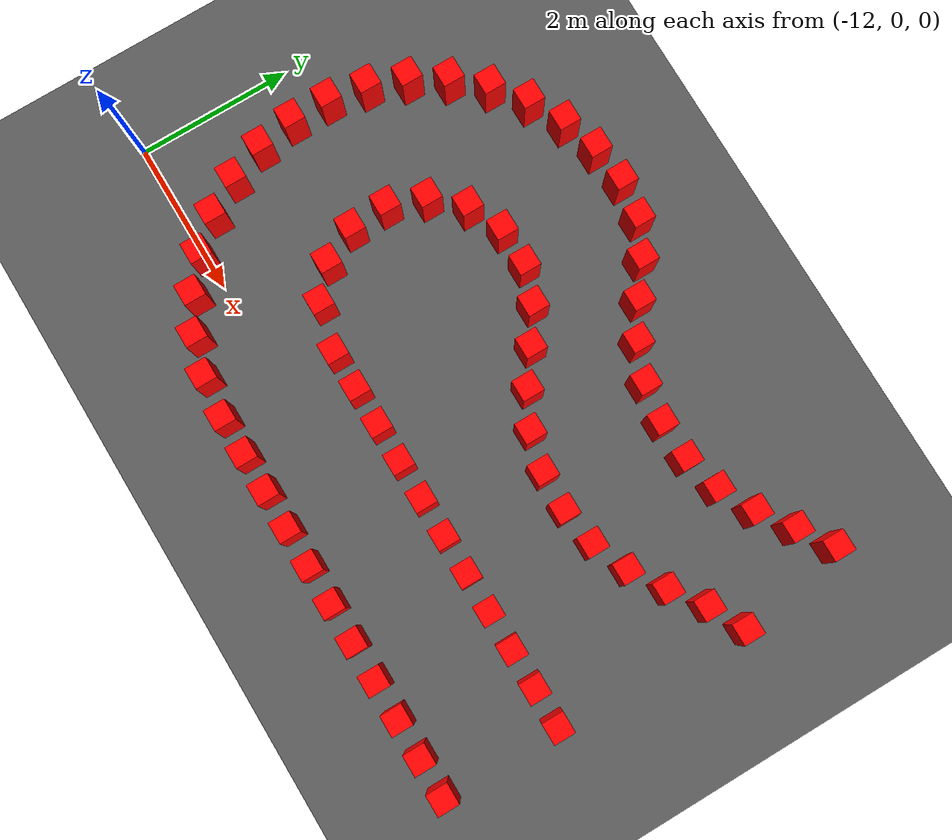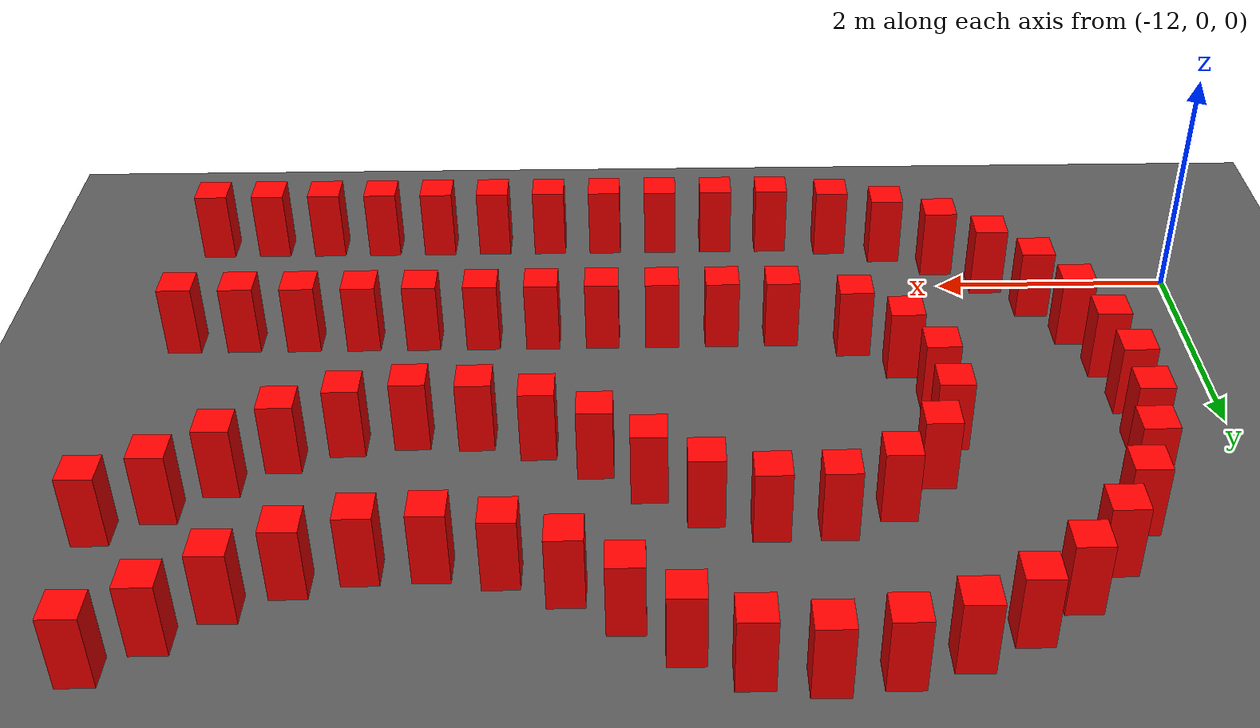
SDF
<sdf version="1.6">
 <world name="prototype">
  <model name="ground">
   <static>true</static>
   <pose>0 0 -0.05 0 0 0</pose>
   <link name="body">
    <visual name="visual">
     <geometry><box><size>200 200 0.1</size></box></geometry>
     <material><ambient>.35 .35 .35 1</ambient><diffuse>.35 .35 .35 1</diffuse></material>
    </visual>
    <collision name="collision"><geometry><box><size>200 200 0.1</size></box></geometry></collision>
   </link>
  </model>
  <model name="cone_proxy_c0">
   <static>true</static>
   <pose>-8.5207 -0.7559 0.315 0 0 0</pose>
   <link name="body">
    <visual name="visual">
     <geometry><box><size>.28 .28 .63</size></box></geometry>
     <material><ambient>1 0 0 1</ambient><diffuse>1 0 0 1</diffuse></material>
    </visual>
    <collision name="collision"><geometry><box><size>.28 .28 .63</size></box></geometry></collision>
   </link>
  </model>
  <model name="cone_proxy_c1">
   <static>true</static>
   <pose>-8.0168 -0.7559 0.315 0 0 0</pose>
   <link name="body">
    <visual name="visual">
     <geometry><box><size>.28 .28 .63</size></box></geometry>
     <material><ambient>1 0 0 1</ambient><diffuse>1 0 0 1</diffuse></material>
    </visual>
    <collision name="collision"><geometry><box><size>.28 .28 .63</size></box></geometry></collision>
   </link>
  </model>
  <model name="cone_proxy_c2">
   <static>true</static>
   <pose>-7.5129 -0.7559 0.315 0 0 0</pose>
   <link name="body">
    <visual name="visual">
     <geometry><box><size>.28 .28 .63</size></box></geometry>
     <material><ambient>1 0 0 1</ambient><diffuse>1 0 0 1</diffuse></material>
    </visual>
    <collision name="collision"><geometry><box><size>.28 .28 .63</size></box></geometry></collision>
   </link>
  </model>
  <model name="cone_proxy_c3">
   <static>true</static>
   <pose>-7.0089 -0.7559 0.315 0 0 0</pose>
   <link name="body">
    <visual name="visual">
     <geometry><box><size>.28 .28 .63</size></box></geometry>
     <material><ambient>1 0 0 1</ambient><diffuse>1 0 0 1</diffuse></material>
    </visual>
    <collision name="collision"><geometry><box><size>.28 .28 .63</size></box></geometry></collision>
   </link>
  </model>
  <model name="cone_proxy_c4">
   <static>true</static>
   <pose>-6.5050 -0.7559 0.315 0 0 0</pose>
   <link name="body">
    <visual name="visual">
     <geometry><box><size>.28 .28 .63</size></box></geometry>
     <material><ambient>1 0 0 1</ambient><diffuse>1 0 0 1</diffuse></material>
    </visual>
    <collision name="collision"><geometry><box><size>.28 .28 .63</size></box></geometry></collision>
   </link>
  </model>
  <model name="cone_proxy_c5">
   <static>true</static>
   <pose>-6.0010 -0.7559 0.315 0 0 0</pose>
   <link name="body">
    <visual name="visual">
     <geometry><box><size>.28 .28 .63</size></box></geometry>
     <material><ambient>1 0 0 1</ambient><diffuse>1 0 0 1</diffuse></material>
    </visual>
    <collision name="collision"><geometry><box><size>.28 .28 .63</size></box></geometry></collision>
   </link>
  </model>
  <model name="cone_proxy_c6">
   <static>true</static>
   <pose>-5.4971 -0.7559 0.315 0 0 0</pose>
   <link name="body">
    <visual name="visual">
     <geometry><box><size>.28 .28 .63</size></box></geometry>
     <material><ambient>1 0 0 1</ambient><diffuse>1 0 0 1</diffuse></material>
    </visual>
    <collision name="collision"><geometry><box><size>.28 .28 .63</size></box></geometry></collision>
   </link>
  </model>
  <model name="cone_proxy_c7">
   <static>true</static>
   <pose>-4.9931 -0.7559 0.315 0 0 0</pose>
   <link name="body">
    <visual name="visual">
     <geometry><box><size>.28 .28 .63</size></box></geometry>
     <material><ambient>1 0 0 1</ambient><diffuse>1 0 0 1</diffuse></material>
    </visual>
    <collision name="collision"><geometry><box><size>.28 .28 .63</size></box></geometry></collision>
   </link>
  </model>
  <model name="cone_proxy_c8">
   <static>true</static>
   <pose>-4.4892 -0.7559 0.315 0 0 0</pose>
   <link name="body">
    <visual name="visual">
     <geometry><box><size>.28 .28 .63</size></box></geometry>
     <material><ambient>1 0 0 1</ambient><diffuse>1 0 0 1</diffuse></material>
    </visual>
    <collision name="collision"><geometry><box><size>.28 .28 .63</size></box></geometry></collision>
   </link>
  </model>
  <model name="cone_proxy_c9">
   <static>true</static>
   <pose>-3.9852 -0.7559 0.315 0 0 0</pose>
   <link name="body">
    <visual name="visual">
     <geometry><box><size>.28 .28 .63</size></box></geometry>
     <material><ambient>1 0 0 1</ambient><diffuse>1 0 0 1</diffuse></material>
    </visual>
    <collision name="collision"><geometry><box><size>.28 .28 .63</size></box></geometry></collision>
   </link>
  </model>
  <model name="cone_proxy_c10">
   <static>true</static>
   <pose>-3.4813 -0.7559 0.315 0 0 0</pose>
   <link name="body">
    <visual name="visual">
     <geometry><box><size>.28 .28 .63</size></box></geometry>
     <material><ambient>1 0 0 1</ambient><diffuse>1 0 0 1</diffuse></material>
    </visual>
    <collision name="collision"><geometry><box><size>.28 .28 .63</size></box></geometry></collision>
   </link>
  </model>
  <model name="cone_proxy_c41">
   <static>true</static>
   <pose>-3.5734 4.5623 0.315 0 0 0</pose>
   <link name="body">
    <visual name="visual">
     <geometry><box><size>.28 .28 .63</size></box></geometry>
     <material><ambient>1 0 0 1</ambient><diffuse>1 0 0 1</diffuse></material>
    </visual>
    <collision name="collision"><geometry><box><size>.28 .28 .63</size></box></geometry></collision>
   </link>
  </model>
  <model name="cone_proxy_c42">
   <static>true</static>
   <pose>-3.9902 4.2798 0.315 0 0 0</pose>
   <link name="body">
    <visual name="visual">
     <geometry><box><size>.28 .28 .63</size></box></geometry>
     <material><ambient>1 0 0 1</ambient><diffuse>1 0 0 1</diffuse></material>
    </visual>
    <collision name="collision"><geometry><box><size>.28 .28 .63</size></box></geometry></collision>
   </link>
  </model>
  <model name="cone_proxy_c43">
   <static>true</static>
   <pose>-4.3991 3.9855 0.315 0 0 0</pose>
   <link name="body">
    <visual name="visual">
     <geometry><box><size>.28 .28 .63</size></box></geometry>
     <material><ambient>1 0 0 1</ambient><diffuse>1 0 0 1</diffuse></material>
    </visual>
    <collision name="collision"><geometry><box><size>.28 .28 .63</size></box></geometry></collision>
   </link>
  </model>
  <model name="cone_proxy_c44">
   <static>true</static>
   <pose>-4.8460 3.7549 0.315 0 0 0</pose>
   <link name="body">
    <visual name="visual">
     <geometry><box><size>.28 .28 .63</size></box></geometry>
     <material><ambient>1 0 0 1</ambient><diffuse>1 0 0 1</diffuse></material>
    </visual>
    <collision name="collision"><geometry><box><size>.28 .28 .63</size></box></geometry></collision>
   </link>
  </model>
  <model name="cone_proxy_c45">
   <static>true</static>
   <pose>-5.3330 3.6297 0.315 0 0 0</pose>
   <link name="body">
    <visual name="visual">
     <geometry><box><size>.28 .28 .63</size></box></geometry>
     <material><ambient>1 0 0 1</ambient><diffuse>1 0 0 1</diffuse></material>
    </visual>
    <collision name="collision"><geometry><box><size>.28 .28 .63</size></box></geometry></collision>
   </link>
  </model>
  <model name="cone_proxy_c46">
   <static>true</static>
   <pose>-5.8358 3.6112 0.315 0 0 0</pose>
   <link name="body">
    <visual name="visual">
     <geometry><box><size>.28 .28 .63</size></box></geometry>
     <material><ambient>1 0 0 1</ambient><diffuse>1 0 0 1</diffuse></material>
    </visual>
    <collision name="collision"><geometry><box><size>.28 .28 .63</size></box></geometry></collision>
   </link>
  </model>
  <model name="cone_proxy_c47">
   <static>true</static>
   <pose>-6.3326 3.6900 0.315 0 0 0</pose>
   <link name="body">
    <visual name="visual">
     <geometry><box><size>.28 .28 .63</size></box></geometry>
     <material><ambient>1 0 0 1</ambient><diffuse>1 0 0 1</diffuse></material>
    </visual>
    <collision name="collision"><geometry><box><size>.28 .28 .63</size></box></geometry></collision>
   </link>
  </model>
  <model name="cone_proxy_c48">
   <static>true</static>
   <pose>-6.7976 3.8811 0.315 0 0 0</pose>
   <link name="body">
    <visual name="visual">
     <geometry><box><size>.28 .28 .63</size></box></geometry>
     <material><ambient>1 0 0 1</ambient><diffuse>1 0 0 1</diffuse></material>
    </visual>
    <collision name="collision"><geometry><box><size>.28 .28 .63</size></box></geometry></collision>
   </link>
  </model>
  <model name="cone_proxy_c49">
   <static>true</static>
   <pose>-7.2186 4.1572 0.315 0 0 0</pose>
   <link name="body">
    <visual name="visual">
     <geometry><box><size>.28 .28 .63</size></box></geometry>
     <material><ambient>1 0 0 1</ambient><diffuse>1 0 0 1</diffuse></material>
    </visual>
    <collision name="collision"><geometry><box><size>.28 .28 .63</size></box></geometry></collision>
   </link>
  </model>
  <model name="cone_proxy_c50">
   <static>true</static>
   <pose>-7.6248 4.4554 0.315 0 0 0</pose>
   <link name="body">
    <visual name="visual">
     <geometry><box><size>.28 .28 .63</size></box></geometry>
     <material><ambient>1 0 0 1</ambient><diffuse>1 0 0 1</diffuse></material>
    </visual>
    <collision name="collision"><geometry><box><size>.28 .28 .63</size></box></geometry></collision>
   </link>
  </model>
  <model name="cone_proxy_c51">
   <static>true</static>
   <pose>-8.0721 4.6837 0.315 0 0 0</pose>
   <link name="body">
    <visual name="visual">
     <geometry><box><size>.28 .28 .63</size></box></geometry>
     <material><ambient>1 0 0 1</ambient><diffuse>1 0 0 1</diffuse></material>
    </visual>
    <collision name="collision"><geometry><box><size>.28 .28 .63</size></box></geometry></collision>
   </link>
  </model>
  <model name="cone_proxy_c52">
   <static>true</static>
   <pose>-8.5682 4.7543 0.315 0 0 0</pose>
   <link name="body">
    <visual name="visual">
     <geometry><box><size>.28 .28 .63</size></box></geometry>
     <material><ambient>1 0 0 1</ambient><diffuse>1 0 0 1</diffuse></material>
    </visual>
    <collision name="collision"><geometry><box><size>.28 .28 .63</size></box></geometry></collision>
   </link>
  </model>
  <model name="cone_proxy_c53">
   <static>true</static>
   <pose>-9.0685 4.7002 0.315 0 0 0</pose>
   <link name="body">
    <visual name="visual">
     <geometry><box><size>.28 .28 .63</size></box></geometry>
     <material><ambient>1 0 0 1</ambient><diffuse>1 0 0 1</diffuse></material>
    </visual>
    <collision name="collision"><geometry><box><size>.28 .28 .63</size></box></geometry></collision>
   </link>
  </model>
  <model name="cone_proxy_c54">
   <static>true</static>
   <pose>-9.5501 4.5547 0.315 0 0 0</pose>
   <link name="body">
    <visual name="visual">
     <geometry><box><size>.28 .28 .63</size></box></geometry>
     <material><ambient>1 0 0 1</ambient><diffuse>1 0 0 1</diffuse></material>
    </visual>
    <collision name="collision"><geometry><box><size>.28 .28 .63</size></box></geometry></collision>
   </link>
  </model>
  <model name="cone_proxy_c55">
   <static>true</static>
   <pose>-9.9981 4.3258 0.315 0 0 0</pose>
   <link name="body">
    <visual name="visual">
     <geometry><box><size>.28 .28 .63</size></box></geometry>
     <material><ambient>1 0 0 1</ambient><diffuse>1 0 0 1</diffuse></material>
    </visual>
    <collision name="collision"><geometry><box><size>.28 .28 .63</size></box></geometry></collision>
   </link>
  </model>
  <model name="cone_proxy_c56">
   <static>true</static>
   <pose>-10.3960 4.0177 0.315 0 0 0</pose>
   <link name="body">
    <visual name="visual">
     <geometry><box><size>.28 .28 .63</size></box></geometry>
     <material><ambient>1 0 0 1</ambient><diffuse>1 0 0 1</diffuse></material>
    </visual>
    <collision name="collision"><geometry><box><size>.28 .28 .63</size></box></geometry></collision>
   </link>
  </model>
  <model name="cone_proxy_c57">
   <static>true</static>
   <pose>-10.7316 3.6429 0.315 0 0 0</pose>
   <link name="body">
    <visual name="visual">
     <geometry><box><size>.28 .28 .63</size></box></geometry>
     <material><ambient>1 0 0 1</ambient><diffuse>1 0 0 1</diffuse></material>
    </visual>
    <collision name="collision"><geometry><box><size>.28 .28 .63</size></box></geometry></collision>
   </link>
  </model>
  <model name="cone_proxy_c58">
   <static>true</static>
   <pose>-10.9947 3.2140 0.315 0 0 0</pose>
   <link name="body">
    <visual name="visual">
     <geometry><box><size>.28 .28 .63</size></box></geometry>
     <material><ambient>1 0 0 1</ambient><diffuse>1 0 0 1</diffuse></material>
    </visual>
    <collision name="collision"><geometry><box><size>.28 .28 .63</size></box></geometry></collision>
   </link>
  </model>
  <model name="cone_proxy_c59">
   <static>true</static>
   <pose>-11.1728 2.7434 0.315 0 0 0</pose>
   <link name="body">
    <visual name="visual">
     <geometry><box><size>.28 .28 .63</size></box></geometry>
     <material><ambient>1 0 0 1</ambient><diffuse>1 0 0 1</diffuse></material>
    </visual>
    <collision name="collision"><geometry><box><size>.28 .28 .63</size></box></geometry></collision>
   </link>
  </model>
  <model name="cone_proxy_c60">
   <static>true</static>
   <pose>-11.2643 2.2487 0.315 0 0 0</pose>
   <link name="body">
    <visual name="visual">
     <geometry><box><size>.28 .28 .63</size></box></geometry>
     <material><ambient>1 0 0 1</ambient><diffuse>1 0 0 1</diffuse></material>
    </visual>
    <collision name="collision"><geometry><box><size>.28 .28 .63</size></box></geometry></collision>
   </link>
  </model>
  <model name="cone_proxy_c61">
   <static>true</static>
   <pose>-11.2639 1.7455 0.315 0 0 0</pose>
   <link name="body">
    <visual name="visual">
     <geometry><box><size>.28 .28 .63</size></box></geometry>
     <material><ambient>1 0 0 1</ambient><diffuse>1 0 0 1</diffuse></material>
    </visual>
    <collision name="collision"><geometry><box><size>.28 .28 .63</size></box></geometry></collision>
   </link>
  </model>
  <model name="cone_proxy_c62">
   <static>true</static>
   <pose>-11.1712 1.2511 0.315 0 0 0</pose>
   <link name="body">
    <visual name="visual">
     <geometry><box><size>.28 .28 .63</size></box></geometry>
     <material><ambient>1 0 0 1</ambient><diffuse>1 0 0 1</diffuse></material>
    </visual>
    <collision name="collision"><geometry><box><size>.28 .28 .63</size></box></geometry></collision>
   </link>
  </model>
  <model name="cone_proxy_c63">
   <static>true</static>
   <pose>-10.9919 0.7810 0.315 0 0 0</pose>
   <link name="body">
    <visual name="visual">
     <geometry><box><size>.28 .28 .63</size></box></geometry>
     <material><ambient>1 0 0 1</ambient><diffuse>1 0 0 1</diffuse></material>
    </visual>
    <collision name="collision"><geometry><box><size>.28 .28 .63</size></box></geometry></collision>
   </link>
  </model>
  <model name="cone_proxy_c64">
   <static>true</static>
   <pose>-10.7281 0.3524 0.315 0 0 0</pose>
   <link name="body">
    <visual name="visual">
     <geometry><box><size>.28 .28 .63</size></box></geometry>
     <material><ambient>1 0 0 1</ambient><diffuse>1 0 0 1</diffuse></material>
    </visual>
    <collision name="collision"><geometry><box><size>.28 .28 .63</size></box></geometry></collision>
   </link>
  </model>
  <model name="cone_proxy_c65">
   <static>true</static>
   <pose>-10.3917 -0.0216 0.315 0 0 0</pose>
   <link name="body">
    <visual name="visual">
     <geometry><box><size>.28 .28 .63</size></box></geometry>
     <material><ambient>1 0 0 1</ambient><diffuse>1 0 0 1</diffuse></material>
    </visual>
    <collision name="collision"><geometry><box><size>.28 .28 .63</size></box></geometry></collision>
   </link>
  </model>
  <model name="cone_proxy_c66">
   <static>true</static>
   <pose>-9.9933 -0.3289 0.315 0 0 0</pose>
   <link name="body">
    <visual name="visual">
     <geometry><box><size>.28 .28 .63</size></box></geometry>
     <material><ambient>1 0 0 1</ambient><diffuse>1 0 0 1</diffuse></material>
    </visual>
    <collision name="collision"><geometry><box><size>.28 .28 .63</size></box></geometry></collision>
   </link>
  </model>
  <model name="cone_proxy_c67">
   <static>true</static>
   <pose>-9.5447 -0.5568 0.315 0 0 0</pose>
   <link name="body">
    <visual name="visual">
     <geometry><box><size>.28 .28 .63</size></box></geometry>
     <material><ambient>1 0 0 1</ambient><diffuse>1 0 0 1</diffuse></material>
    </visual>
    <collision name="collision"><geometry><box><size>.28 .28 .63</size></box></geometry></collision>
   </link>
  </model>
  <model name="cone_proxy_c68">
   <static>true</static>
   <pose>-9.0628 -0.7011 0.315 0 0 0</pose>
   <link name="body">
    <visual name="visual">
     <geometry><box><size>.28 .28 .63</size></box></geometry>
     <material><ambient>1 0 0 1</ambient><diffuse>1 0 0 1</diffuse></material>
    </visual>
    <collision name="collision"><geometry><box><size>.28 .28 .63</size></box></geometry></collision>
   </link>
  </model>
  <model name="cone_proxy_c69">
   <static>true</static>
   <pose>-8.5207 0.7559 0.315 0 0 0</pose>
   <link name="body">
    <visual name="visual">
     <geometry><box><size>.28 .28 .63</size></box></geometry>
     <material><ambient>1 0 0 1</ambient><diffuse>1 0 0 1</diffuse></material>
    </visual>
    <collision name="collision"><geometry><box><size>.28 .28 .63</size></box></geometry></collision>
   </link>
  </model>
  <model name="cone_proxy_c70">
   <static>true</static>
   <pose>-8.0168 0.7559 0.315 0 0 0</pose>
   <link name="body">
    <visual name="visual">
     <geometry><box><size>.28 .28 .63</size></box></geometry>
     <material><ambient>1 0 0 1</ambient><diffuse>1 0 0 1</diffuse></material>
    </visual>
    <collision name="collision"><geometry><box><size>.28 .28 .63</size></box></geometry></collision>
   </link>
  </model>
  <model name="cone_proxy_c71">
   <static>true</static>
   <pose>-7.5129 0.7559 0.315 0 0 0</pose>
   <link name="body">
    <visual name="visual">
     <geometry><box><size>.28 .28 .63</size></box></geometry>
     <material><ambient>1 0 0 1</ambient><diffuse>1 0 0 1</diffuse></material>
    </visual>
    <collision name="collision"><geometry><box><size>.28 .28 .63</size></box></geometry></collision>
   </link>
  </model>
  <model name="cone_proxy_c72">
   <static>true</static>
   <pose>-7.0089 0.7559 0.315 0 0 0</pose>
   <link name="body">
    <visual name="visual">
     <geometry><box><size>.28 .28 .63</size></box></geometry>
     <material><ambient>1 0 0 1</ambient><diffuse>1 0 0 1</diffuse></material>
    </visual>
    <collision name="collision"><geometry><box><size>.28 .28 .63</size></box></geometry></collision>
   </link>
  </model>
  <model name="cone_proxy_c73">
   <static>true</static>
   <pose>-6.5050 0.7559 0.315 0 0 0</pose>
   <link name="body">
    <visual name="visual">
     <geometry><box><size>.28 .28 .63</size></box></geometry>
     <material><ambient>1 0 0 1</ambient><diffuse>1 0 0 1</diffuse></material>
    </visual>
    <collision name="collision"><geometry><box><size>.28 .28 .63</size></box></geometry></collision>
   </link>
  </model>
  <model name="cone_proxy_c74">
   <static>true</static>
   <pose>-6.0010 0.7559 0.315 0 0 0</pose>
   <link name="body">
    <visual name="visual">
     <geometry><box><size>.28 .28 .63</size></box></geometry>
     <material><ambient>1 0 0 1</ambient><diffuse>1 0 0 1</diffuse></material>
    </visual>
    <collision name="collision"><geometry><box><size>.28 .28 .63</size></box></geometry></collision>
   </link>
  </model>
  <model name="cone_proxy_c75">
   <static>true</static>
   <pose>-5.4971 0.7559 0.315 0 0 0</pose>
   <link name="body">
    <visual name="visual">
     <geometry><box><size>.28 .28 .63</size></box></geometry>
     <material><ambient>1 0 0 1</ambient><diffuse>1 0 0 1</diffuse></material>
    </visual>
    <collision name="collision"><geometry><box><size>.28 .28 .63</size></box></geometry></collision>
   </link>
  </model>
  <model name="cone_proxy_c76">
   <static>true</static>
   <pose>-4.9931 0.7559 0.315 0 0 0</pose>
   <link name="body">
    <visual name="visual">
     <geometry><box><size>.28 .28 .63</size></box></geometry>
     <material><ambient>1 0 0 1</ambient><diffuse>1 0 0 1</diffuse></material>
    </visual>
    <collision name="collision"><geometry><box><size>.28 .28 .63</size></box></geometry></collision>
   </link>
  </model>
  <model name="cone_proxy_c77">
   <static>true</static>
   <pose>-4.4892 0.7559 0.315 0 0 0</pose>
   <link name="body">
    <visual name="visual">
     <geometry><box><size>.28 .28 .63</size></box></geometry>
     <material><ambient>1 0 0 1</ambient><diffuse>1 0 0 1</diffuse></material>
    </visual>
    <collision name="collision"><geometry><box><size>.28 .28 .63</size></box></geometry></collision>
   </link>
  </model>
  <model name="cone_proxy_c78">
   <static>true</static>
   <pose>-3.9852 0.7559 0.315 0 0 0</pose>
   <link name="body">
    <visual name="visual">
     <geometry><box><size>.28 .28 .63</size></box></geometry>
     <material><ambient>1 0 0 1</ambient><diffuse>1 0 0 1</diffuse></material>
    </visual>
    <collision name="collision"><geometry><box><size>.28 .28 .63</size></box></geometry></collision>
   </link>
  </model>
  <model name="cone_proxy_c79">
   <static>true</static>
   <pose>-3.4813 0.7559 0.315 0 0 0</pose>
   <link name="body">
    <visual name="visual">
     <geometry><box><size>.28 .28 .63</size></box></geometry>
     <material><ambient>1 0 0 1</ambient><diffuse>1 0 0 1</diffuse></material>
    </visual>
    <collision name="collision"><geometry><box><size>.28 .28 .63</size></box></geometry></collision>
   </link>
  </model>
  <model name="cone_proxy_c101">
   <static>true</static>
   <pose>-3.3084 3.1692 0.315 0 0 0</pose>
   <link name="body">
    <visual name="visual">
     <geometry><box><size>.28 .28 .63</size></box></geometry>
     <material><ambient>1 0 0 1</ambient><diffuse>1 0 0 1</diffuse></material>
    </visual>
    <collision name="collision"><geometry><box><size>.28 .28 .63</size></box></geometry></collision>
   </link>
  </model>
  <model name="cone_proxy_c102">
   <static>true</static>
   <pose>-3.7546 2.9385 0.315 0 0 0</pose>
   <link name="body">
    <visual name="visual">
     <geometry><box><size>.28 .28 .63</size></box></geometry>
     <material><ambient>1 0 0 1</ambient><diffuse>1 0 0 1</diffuse></material>
    </visual>
    <collision name="collision"><geometry><box><size>.28 .28 .63</size></box></geometry></collision>
   </link>
  </model>
  <model name="cone_proxy_c103">
   <static>true</static>
   <pose>-4.1607 2.6401 0.315 0 0 0</pose>
   <link name="body">
    <visual name="visual">
     <geometry><box><size>.28 .28 .63</size></box></geometry>
     <material><ambient>1 0 0 1</ambient><diffuse>1 0 0 1</diffuse></material>
    </visual>
    <collision name="collision"><geometry><box><size>.28 .28 .63</size></box></geometry></collision>
   </link>
  </model>
  <model name="cone_proxy_c104">
   <static>true</static>
   <pose>-4.5823 2.3650 0.315 0 0 0</pose>
   <link name="body">
    <visual name="visual">
     <geometry><box><size>.28 .28 .63</size></box></geometry>
     <material><ambient>1 0 0 1</ambient><diffuse>1 0 0 1</diffuse></material>
    </visual>
    <collision name="collision"><geometry><box><size>.28 .28 .63</size></box></geometry></collision>
   </link>
  </model>
  <model name="cone_proxy_c105">
   <static>true</static>
   <pose>-5.0482 2.1760 0.315 0 0 0</pose>
   <link name="body">
    <visual name="visual">
     <geometry><box><size>.28 .28 .63</size></box></geometry>
     <material><ambient>1 0 0 1</ambient><diffuse>1 0 0 1</diffuse></material>
    </visual>
    <collision name="collision"><geometry><box><size>.28 .28 .63</size></box></geometry></collision>
   </link>
  </model>
  <model name="cone_proxy_c106">
   <static>true</static>
   <pose>-5.5451 2.0991 0.315 0 0 0</pose>
   <link name="body">
    <visual name="visual">
     <geometry><box><size>.28 .28 .63</size></box></geometry>
     <material><ambient>1 0 0 1</ambient><diffuse>1 0 0 1</diffuse></material>
    </visual>
    <collision name="collision"><geometry><box><size>.28 .28 .63</size></box></geometry></collision>
   </link>
  </model>
  <model name="cone_proxy_c107">
   <static>true</static>
   <pose>-6.0479 2.1193 0.315 0 0 0</pose>
   <link name="body">
    <visual name="visual">
     <geometry><box><size>.28 .28 .63</size></box></geometry>
     <material><ambient>1 0 0 1</ambient><diffuse>1 0 0 1</diffuse></material>
    </visual>
    <collision name="collision"><geometry><box><size>.28 .28 .63</size></box></geometry></collision>
   </link>
  </model>
  <model name="cone_proxy_c108">
   <static>true</static>
   <pose>-6.5343 2.2463 0.315 0 0 0</pose>
   <link name="body">
    <visual name="visual">
     <geometry><box><size>.28 .28 .63</size></box></geometry>
     <material><ambient>1 0 0 1</ambient><diffuse>1 0 0 1</diffuse></material>
    </visual>
    <collision name="collision"><geometry><box><size>.28 .28 .63</size></box></geometry></collision>
   </link>
  </model>
  <model name="cone_proxy_c109">
   <static>true</static>
   <pose>-6.9804 2.4785 0.315 0 0 0</pose>
   <link name="body">
    <visual name="visual">
     <geometry><box><size>.28 .28 .63</size></box></geometry>
     <material><ambient>1 0 0 1</ambient><diffuse>1 0 0 1</diffuse></material>
    </visual>
    <collision name="collision"><geometry><box><size>.28 .28 .63</size></box></geometry></collision>
   </link>
  </model>
  <model name="cone_proxy_c110">
   <static>true</static>
   <pose>-7.3890 2.7733 0.315 0 0 0</pose>
   <link name="body">
    <visual name="visual">
     <geometry><box><size>.28 .28 .63</size></box></geometry>
     <material><ambient>1 0 0 1</ambient><diffuse>1 0 0 1</diffuse></material>
    </visual>
    <collision name="collision"><geometry><box><size>.28 .28 .63</size></box></geometry></collision>
   </link>
  </model>
  <model name="cone_proxy_c111">
   <static>true</static>
   <pose>-7.8064 3.0549 0.315 0 0 0</pose>
   <link name="body">
    <visual name="visual">
     <geometry><box><size>.28 .28 .63</size></box></geometry>
     <material><ambient>1 0 0 1</ambient><diffuse>1 0 0 1</diffuse></material>
    </visual>
    <collision name="collision"><geometry><box><size>.28 .28 .63</size></box></geometry></collision>
   </link>
  </model>
  <model name="cone_proxy_c112">
   <static>true</static>
   <pose>-8.2785 3.2237 0.315 0 0 0</pose>
   <link name="body">
    <visual name="visual">
     <geometry><box><size>.28 .28 .63</size></box></geometry>
     <material><ambient>1 0 0 1</ambient><diffuse>1 0 0 1</diffuse></material>
    </visual>
    <collision name="collision"><geometry><box><size>.28 .28 .63</size></box></geometry></collision>
   </link>
  </model>
  <model name="cone_proxy_c113">
   <static>true</static>
   <pose>-8.7795 3.2169 0.315 0 0 0</pose>
   <link name="body">
    <visual name="visual">
     <geometry><box><size>.28 .28 .63</size></box></geometry>
     <material><ambient>1 0 0 1</ambient><diffuse>1 0 0 1</diffuse></material>
    </visual>
    <collision name="collision"><geometry><box><size>.28 .28 .63</size></box></geometry></collision>
   </link>
  </model>
  <model name="cone_proxy_c114">
   <static>true</static>
   <pose>-9.2379 3.0160 0.315 0 0 0</pose>
   <link name="body">
    <visual name="visual">
     <geometry><box><size>.28 .28 .63</size></box></geometry>
     <material><ambient>1 0 0 1</ambient><diffuse>1 0 0 1</diffuse></material>
    </visual>
    <collision name="collision"><geometry><box><size>.28 .28 .63</size></box></geometry></collision>
   </link>
  </model>
  <model name="cone_proxy_c115">
   <static>true</static>
   <pose>-9.5801 2.6510 0.315 0 0 0</pose>
   <link name="body">
    <visual name="visual">
     <geometry><box><size>.28 .28 .63</size></box></geometry>
     <material><ambient>1 0 0 1</ambient><diffuse>1 0 0 1</diffuse></material>
    </visual>
    <collision name="collision"><geometry><box><size>.28 .28 .63</size></box></geometry></collision>
   </link>
  </model>
  <model name="cone_proxy_c116">
   <static>true</static>
   <pose>-9.7509 2.1807 0.315 0 0 0</pose>
   <link name="body">
    <visual name="visual">
     <geometry><box><size>.28 .28 .63</size></box></geometry>
     <material><ambient>1 0 0 1</ambient><diffuse>1 0 0 1</diffuse></material>
    </visual>
    <collision name="collision"><geometry><box><size>.28 .28 .63</size></box></geometry></collision>
   </link>
  </model>
  <model name="cone_proxy_c117">
   <static>true</static>
   <pose>-9.7228 1.6812 0.315 0 0 0</pose>
   <link name="body">
    <visual name="visual">
     <geometry><box><size>.28 .28 .63</size></box></geometry>
     <material><ambient>1 0 0 1</ambient><diffuse>1 0 0 1</diffuse></material>
    </visual>
    <collision name="collision"><geometry><box><size>.28 .28 .63</size></box></geometry></collision>
   </link>
  </model>
  <model name="cone_proxy_c118">
   <static>true</static>
   <pose>-9.5001 1.2329 0.315 0 0 0</pose>
   <link name="body">
    <visual name="visual">
     <geometry><box><size>.28 .28 .63</size></box></geometry>
     <material><ambient>1 0 0 1</ambient><diffuse>1 0 0 1</diffuse></material>
    </visual>
    <collision name="collision"><geometry><box><size>.28 .28 .63</size></box></geometry></collision>
   </link>
  </model>
  <model name="cone_proxy_c119">
   <static>true</static>
   <pose>-9.1183 0.9093 0.315 0 0 0</pose>
   <link name="body">
    <visual name="visual">
     <geometry><box><size>.28 .28 .63</size></box></geometry>
     <material><ambient>1 0 0 1</ambient><diffuse>1 0 0 1</diffuse></material>
    </visual>
    <collision name="collision"><geometry><box><size>.28 .28 .63</size></box></geometry></collision>
   </link>
  </model>
 </world>
</sdf>
